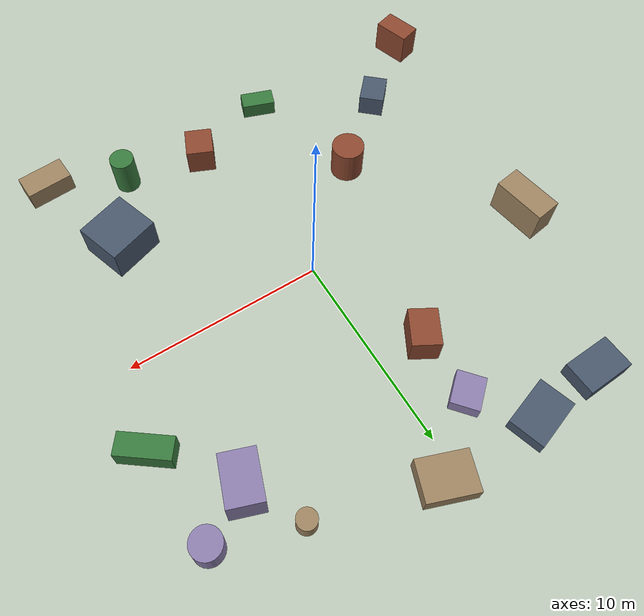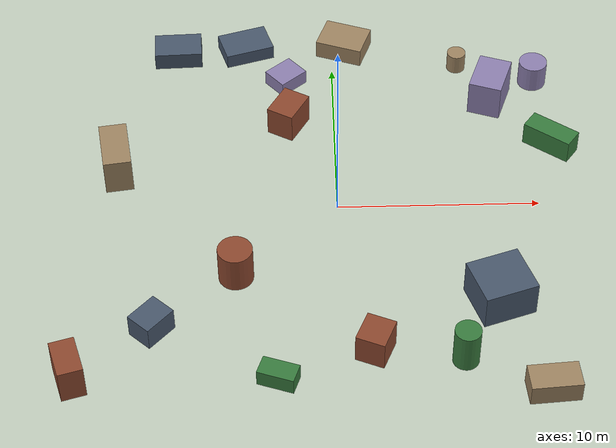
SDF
<sdf version="1.10">
 <world name="robotx_task1_uav_view">
  <gravity>0 0 -9.81</gravity>
  <physics name="physics" type="ode">
   <max_step_size>0.002</max_step_size>
   <real_time_factor>1.0</real_time_factor>
  </physics>
  <scene>
   <ambient>0.27 0.27 0.27 1.0</ambient>
   <background>0.62 0.75 0.92 1.0</background>
   <shadows>true</shadows>
   <grid>false</grid>
  </scene>
  <light name="sun" type="directional">
   <pose>0 0 300 0 0 0</pose>
   <diffuse>1.00 0.98 0.94 1.0</diffuse>
   <specular>1.00 1.00 1.00 1.0</specular>
   <direction>0.26 -0.12 -1.0</direction>
   <attenuation>
    <range>2500</range>
    <constant>0.85</constant>
    <linear>0.001</linear>
    <quadratic>0.00005</quadratic>
   </attenuation>
  </light>
  <plugin filename="gz-sim-physics-system" name="gz::sim::systems::Physics"/>
  <plugin filename="gz-sim-user-commands-system" name="gz::sim::systems::UserCommands"/>
  <plugin filename="gz-sim-scene-broadcaster-system" name="gz::sim::systems::SceneBroadcaster"/>
  <plugin filename="gz-sim-sensors-system" name="gz::sim::systems::Sensors">
   <render_engine>ogre2</render_engine>
  </plugin>
  <model name="scene_clutter_box_000">
   <static>true</static>
   <pose>9.356 -11.569 0.572 0 0 1.648554</pose>
   <link name="link">
    <visual name="v">
     <geometry><box><size>1.341 2.352 1.104</size></box></geometry>
     <material><ambient>0.45 0.38 0.32 1.0</ambient><diffuse>0.62 0.52 0.38 1.0</diffuse></material>
    </visual>
   </link>
  </model>
  <model name="scene_clutter_box_001">
   <static>true</static>
   <pose>7.452 -6.261 0.951 0 0 -2.811800</pose>
   <link name="link">
    <visual name="v">
     <geometry><box><size>2.622 2.451 1.862</size></box></geometry>
     <material><ambient>0.18 0.22 0.28 1.0</ambient><diffuse>0.28 0.34 0.42 1.0</diffuse></material>
    </visual>
   </link>
  </model>
  <model name="scene_clutter_box_002">
   <static>true</static>
   <pose>-12.330 -10.539 0.937 0 0 0.291131</pose>
   <link name="link">
    <visual name="v">
     <geometry><box><size>1.174 1.933 1.835</size></box></geometry>
     <material><ambient>0.35 0.16 0.12 1.0</ambient><diffuse>0.55 0.28 0.18 1.0</diffuse></material>
    </visual>
   </link>
  </model>
  <model name="scene_clutter_box_003">
   <static>true</static>
   <pose>10.974 4.037 0.635 0 0 -2.204570</pose>
   <link name="link">
    <visual name="v">
     <geometry><box><size>1.062 2.588 1.231</size></box></geometry>
     <material><ambient>0.12 0.30 0.14 1.0</ambient><diffuse>0.22 0.48 0.24 1.0</diffuse></material>
    </visual>
   </link>
  </model>
  <model name="scene_clutter_cyl_004">
   <static>true</static>
   <pose>10.544 8.903 0.751 0 0 -1.036696</pose>
   <link name="link">
    <visual name="v">
     <geometry><cylinder><radius>0.728</radius><length>1.402</length></cylinder></geometry>
     <material><ambient>0.40 0.35 0.50 1.0</ambient><diffuse>0.55 0.50 0.68 1.0</diffuse></material>
    </visual>
   </link>
  </model>
  <model name="scene_clutter_box_005">
   <static>true</static>
   <pose>-10.969 2.751 0.986 0 0 1.719810</pose>
   <link name="link">
    <visual name="v">
     <geometry><box><size>2.761 1.387 1.932</size></box></geometry>
     <material><ambient>0.45 0.38 0.32 1.0</ambient><diffuse>0.62 0.52 0.38 1.0</diffuse></material>
    </visual>
   </link>
  </model>
  <model name="scene_clutter_box_006">
   <static>true</static>
   <pose>-8.195 11.315 0.484 0 0 -1.529367</pose>
   <link name="link">
    <visual name="v">
     <geometry><box><size>1.651 2.476 0.929</size></box></geometry>
     <material><ambient>0.18 0.22 0.28 1.0</ambient><diffuse>0.28 0.34 0.42 1.0</diffuse></material>
    </visual>
   </link>
  </model>
  <model name="scene_clutter_box_007">
   <static>true</static>
   <pose>1.499 -9.146 0.802 0 0 -0.401035</pose>
   <link name="link">
    <visual name="v">
     <geometry><box><size>1.416 1.564 1.564</size></box></geometry>
     <material><ambient>0.35 0.16 0.12 1.0</ambient><diffuse>0.55 0.28 0.18 1.0</diffuse></material>
    </visual>
   </link>
  </model>
  <model name="scene_clutter_cyl_008">
   <static>true</static>
   <pose>5.580 -9.761 1.099 0 0 -2.626410</pose>
   <link name="link">
    <visual name="v">
     <geometry><cylinder><radius>0.620</radius><length>2.097</length></cylinder></geometry>
     <material><ambient>0.12 0.30 0.14 1.0</ambient><diffuse>0.22 0.48 0.24 1.0</diffuse></material>
    </visual>
   </link>
  </model>
  <model name="scene_clutter_box_009">
   <static>true</static>
   <pose>8.145 7.519 0.990 0 0 2.802748</pose>
   <link name="link">
    <visual name="v">
     <geometry><box><size>1.686 2.320 1.940</size></box></geometry>
     <material><ambient>0.40 0.35 0.50 1.0</ambient><diffuse>0.55 0.50 0.68 1.0</diffuse></material>
    </visual>
   </link>
  </model>
  <model name="scene_clutter_cyl_010">
   <static>true</static>
   <pose>6.619 10.145 0.572 0 0 -1.261694</pose>
   <link name="link">
    <visual name="v">
     <geometry><cylinder><radius>0.482</radius><length>1.044</length></cylinder></geometry>
     <material><ambient>0.45 0.38 0.32 1.0</ambient><diffuse>0.62 0.52 0.38 1.0</diffuse></material>
    </visual>
   </link>
  </model>
  <model name="scene_clutter_box_011">
   <static>true</static>
   <pose>-8.760 -7.672 0.638 0 0 2.402139</pose>
   <link name="link">
    <visual name="v">
     <geometry><box><size>1.321 1.670 1.236</size></box></geometry>
     <material><ambient>0.18 0.22 0.28 1.0</ambient><diffuse>0.28 0.34 0.42 1.0</diffuse></material>
    </visual>
   </link>
  </model>
  <model name="scene_clutter_box_012">
   <static>true</static>
   <pose>-2.337 5.891 0.816 0 0 2.629101</pose>
   <link name="link">
    <visual name="v">
     <geometry><box><size>1.421 1.849 1.592</size></box></geometry>
     <material><ambient>0.35 0.16 0.12 1.0</ambient><diffuse>0.55 0.28 0.18 1.0</diffuse></material>
    </visual>
   </link>
  </model>
  <model name="scene_clutter_box_013">
   <static>true</static>
   <pose>-2.938 -10.714 0.456 0 0 1.236572</pose>
   <link name="link">
    <visual name="v">
     <geometry><box><size>0.962 1.761 0.872</size></box></geometry>
     <material><ambient>0.12 0.30 0.14 1.0</ambient><diffuse>0.22 0.48 0.24 1.0</diffuse></material>
    </visual>
   </link>
  </model>
  <model name="scene_clutter_box_014">
   <static>true</static>
   <pose>-2.459 9.181 0.415 0 0 2.276438</pose>
   <link name="link">
    <visual name="v">
     <geometry><box><size>1.387 1.634 0.789</size></box></geometry>
     <material><ambient>0.40 0.35 0.50 1.0</ambient><diffuse>0.55 0.50 0.68 1.0</diffuse></material>
    </visual>
   </link>
  </model>
  <model name="scene_clutter_box_015">
   <static>true</static>
   <pose>0.672 11.729 0.517 0 0 1.223303</pose>
   <link name="link">
    <visual name="v">
     <geometry><box><size>1.897 2.471 0.993</size></box></geometry>
     <material><ambient>0.45 0.38 0.32 1.0</ambient><diffuse>0.62 0.52 0.38 1.0</diffuse></material>
    </visual>
   </link>
  </model>
  <model name="scene_clutter_box_016">
   <static>true</static>
   <pose>-4.590 11.678 0.404 0 0 -1.268115</pose>
   <link name="link">
    <visual name="v">
     <geometry><box><size>1.788 2.578 0.767</size></box></geometry>
     <material><ambient>0.18 0.22 0.28 1.0</ambient><diffuse>0.28 0.34 0.42 1.0</diffuse></material>
    </visual>
   </link>
  </model>
  <model name="scene_clutter_cyl_017">
   <static>true</static>
   <pose>-4.918 -4.485 1.021 0 0 -1.304087</pose>
   <link name="link">
    <visual name="v">
     <geometry><cylinder><radius>0.842</radius><length>1.941</length></cylinder></geometry>
     <material><ambient>0.35 0.16 0.12 1.0</ambient><diffuse>0.55 0.28 0.18 1.0</diffuse></material>
    </visual>
   </link>
  </model>
  <model name="uav_dataset_camera">
   <static>false</static>
   <pose>0 0 26 0 0 0</pose>
   <plugin filename="librobotx_overhead_motion_plugin.dylib" name="robotx::OverheadMotionPlugin">
    <radius_x_m>10.72100</radius_x_m>
    <radius_y_m>9.19822</radius_y_m>
    <angular_speed_rad_s>0.079748</angular_speed_rad_s>
    <phase_rad>6.199558</phase_rad>
    <z_wobble_m>0.11985</z_wobble_m>
    <z_wobble_hz>0.04232</z_wobble_hz>
    <z_wobble_phase_rad>1.145841</z_wobble_phase_rad>
   </plugin>
   <link name="camera_link">
    <gravity>false</gravity>
    <sensor name="top_down_rgb" type="camera">
     <always_on>true</always_on>
     <update_rate>20</update_rate>
     <pose>0 0 0 0 1.57079632679 0</pose>
     <camera>
      <horizontal_fov>1.05</horizontal_fov>
      <image><width>1920</width><height>1080</height><format>R8G8B8</format></image>
      <clip><near>0.2</near><far>600</far></clip>
     </camera>
     <topic>/robotx/uav/camera/image_raw</topic>
     <visualize>true</visualize>
    </sensor>
   </link>
  </model>
 </world>
</sdf>
